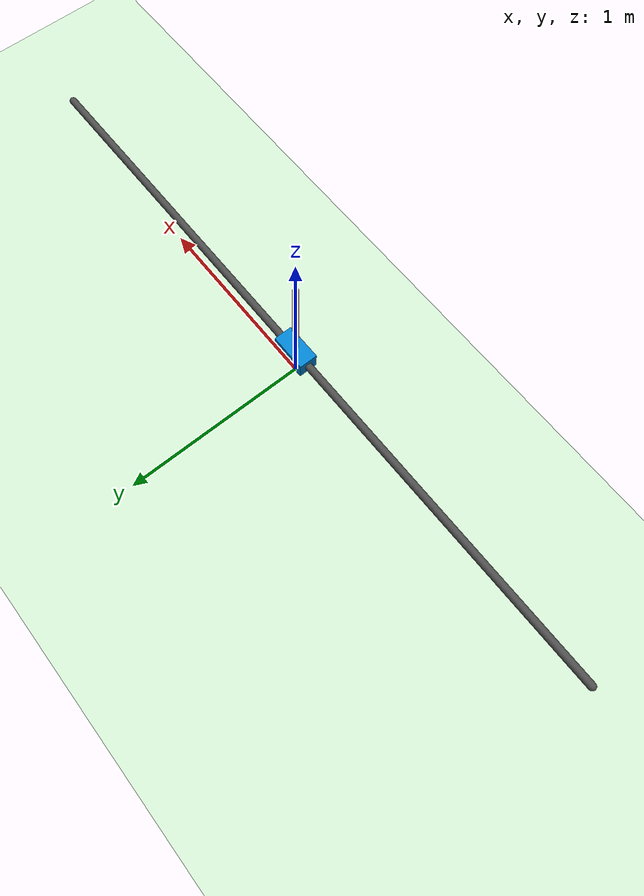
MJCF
<mujoco model="inverted_pendulum">

    <default>
        <joint damping="0.05" armature="0.01"/>
        <geom contype="1" conaffinity="1" friction="1 0.1 0.1" rgba="0.7 0.7 0.7 1"/>
    </default>

    <worldbody>
        <light directional="true" diffuse=".8 .8 .8" specular=".2 .2 .2" pos="0 0 5" dir="0 0 -1"/>
        <geom name="floor" type="plane" pos="0 0 0" size="10 10 .05" rgba="0.8 0.9 0.8 1"/>

        <geom name="rail" type="capsule" pos="0 0 0.2" quat="0.707 0 0.707 0" size="0.02 2"
            rgba="0.3 0.3 0.3 1" contype="0" conaffinity="0"/>
        <body name="cart" pos="0 0 0.2">
            <inertial pos="0 0 0" mass="0.5" diaginertia="0.01 0.01 0.01"/>
            <joint name="slider" type="slide" pos="0 0 0" axis="1 0 0" limited="true" range="-10 10" damping="0.1"/>
            <geom name="cart_geom" type="box" size="0.1 0.05 0.05" rgba="0 0.5 0.8 1"/>

            <body name="pole" pos="0 0 0">
                <inertial pos="0 0 0.3" mass="0.2" diaginertia="0.006 0.006 0.0001"/>
                <joint name="hinge" type="hinge" pos="0 0 0" axis="0 1 0" damping="0.001"/>
                <geom name="pole_geom" type="capsule" fromto="0 0 0 0 0 0.6" size="0.015" rgba="0.8 0.2 0.2 1"/>
            </body>
        </body>
    </worldbody>

    <actuator>
        <motor name="force_actuator" joint="slider" gear="1" ctrllimited="true" ctrlrange="-100 100"/>
    </actuator>
</mujoco>
